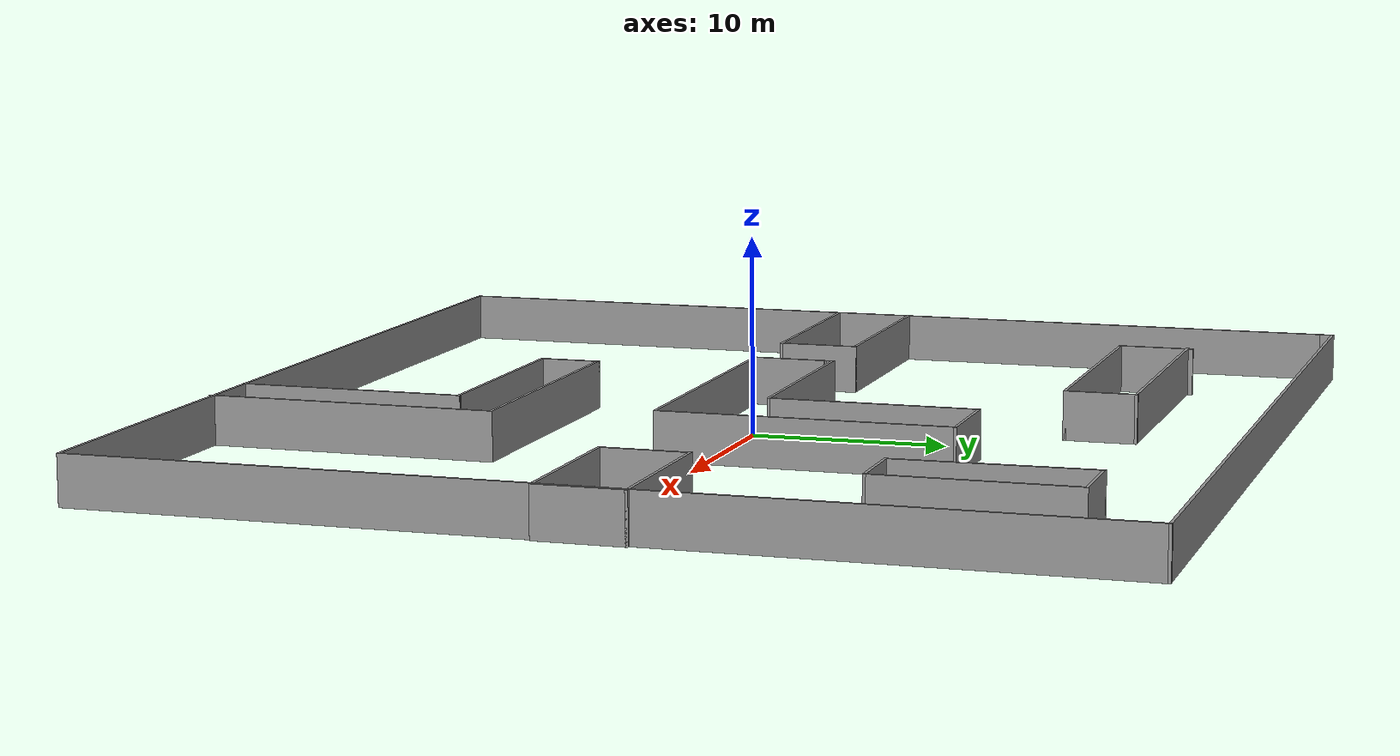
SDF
<?xml version='1.0'?>
<sdf version='1.7'>
  <model name='olha_storage'>
    <pose>0.331672 0.393657 0 0 -0 0</pose>
    <link name='Wall_11'>
      <collision name='Wall_11_Collision'>
        <geometry>
          <box>
            <size>11.75 0.15 2.5</size>
          </box>
        </geometry>
        <pose>0 0 1.25 0 -0 0</pose>
      </collision>
      <visual name='Wall_11_Visual'>
        <pose>0 0 1.25 0 -0 0</pose>
        <geometry>
          <box>
            <size>11.75 0.15 2.5</size>
          </box>
        </geometry>
        <material>
          <script>
            <uri>file://media/materials/scripts/gazebo.material</uri>
            <name>Gazebo/Grey</name>
          </script>
          <ambient>1 1 1 1</ambient>
        </material>
        <meta>
          <layer>0</layer>
        </meta>
      </visual>
      <pose>-19.6433 1.20092 0 0 -0 0</pose>
    </link>
    <link name='Wall_12'>
      <collision name='Wall_12_Collision'>
        <geometry>
          <box>
            <size>4.25 0.15 2.5</size>
          </box>
        </geometry>
        <pose>0 0 1.25 0 -0 0</pose>
      </collision>
      <visual name='Wall_12_Visual'>
        <pose>0 0 1.25 0 -0 0</pose>
        <geometry>
          <box>
            <size>4.25 0.15 2.5</size>
          </box>
        </geometry>
        <material>
          <script>
            <uri>file://media/materials/scripts/gazebo.material</uri>
            <name>Gazebo/Grey</name>
          </script>
          <ambient>1 1 1 1</ambient>
        </material>
        <meta>
          <layer>0</layer>
        </meta>
      </visual>
      <pose>-13.8433 -0.849081 0 0 -0 -1.5708</pose>
    </link>
    <link name='Wall_13'>
      <collision name='Wall_13_Collision'>
        <geometry>
          <box>
            <size>11.5 0.15 2.5</size>
          </box>
        </geometry>
        <pose>0 0 1.25 0 -0 0</pose>
      </collision>
      <visual name='Wall_13_Visual'>
        <pose>0 0 1.25 0 -0 0</pose>
        <geometry>
          <box>
            <size>11.5 0.15 2.5</size>
          </box>
        </geometry>
        <material>
          <script>
            <uri>file://media/materials/scripts/gazebo.material</uri>
            <name>Gazebo/Grey</name>
          </script>
          <ambient>1 1 1 1</ambient>
        </material>
        <meta>
          <layer>0</layer>
        </meta>
      </visual>
      <pose>-19.5183 -2.89908 0 0 -0 3.14159</pose>
    </link>
    <link name='Wall_15'>
      <collision name='Wall_15_Collision'>
        <geometry>
          <box>
            <size>4 0.15 2.5</size>
          </box>
        </geometry>
        <pose>0 0 1.25 0 -0 0</pose>
      </collision>
      <visual name='Wall_15_Visual'>
        <pose>0 0 1.25 0 -0 0</pose>
        <geometry>
          <box>
            <size>4 0.15 2.5</size>
          </box>
        </geometry>
        <material>
          <script>
            <uri>file://media/materials/scripts/gazebo.material</uri>
            <name>Gazebo/Grey</name>
          </script>
          <ambient>1 1 1 1</ambient>
        </material>
        <meta>
          <layer>0</layer>
        </meta>
      </visual>
      <pose>-8.97387 -1.00323 0 0 -0 -1.5708</pose>
    </link>
    <link name='Wall_16'>
      <collision name='Wall_16_Collision'>
        <geometry>
          <box>
            <size>16.5 0.15 2.5</size>
          </box>
        </geometry>
        <pose>0 0 1.25 0 -0 0</pose>
      </collision>
      <visual name='Wall_16_Visual'>
        <pose>0 0 1.25 0 -0 0</pose>
        <geometry>
          <box>
            <size>16.5 0.15 2.5</size>
          </box>
        </geometry>
        <material>
          <script>
            <uri>file://media/materials/scripts/gazebo.material</uri>
            <name>Gazebo/Grey</name>
          </script>
          <ambient>1 1 1 1</ambient>
        </material>
        <meta>
          <layer>0</layer>
        </meta>
      </visual>
      <pose>-0.798866 -2.92822 0 0 -0 0</pose>
    </link>
    <link name='Wall_17'>
      <collision name='Wall_17_Collision'>
        <geometry>
          <box>
            <size>15 0.15 2.5</size>
          </box>
        </geometry>
        <pose>0 0 1.25 0 -0 0</pose>
      </collision>
      <visual name='Wall_17_Visual'>
        <pose>0 0 1.25 0 -0 0</pose>
        <geometry>
          <box>
            <size>15 0.15 2.5</size>
          </box>
        </geometry>
        <material>
          <script>
            <uri>file://media/materials/scripts/gazebo.material</uri>
            <name>Gazebo/Grey</name>
          </script>
          <ambient>1 1 1 1</ambient>
        </material>
        <meta>
          <layer>0</layer>
        </meta>
      </visual>
      <pose>7.37613 4.49678 0 0 -0 1.5708</pose>
    </link>
    <link name='Wall_18'>
      <collision name='Wall_18_Collision'>
        <geometry>
          <box>
            <size>5 0.15 2.5</size>
          </box>
        </geometry>
        <pose>0 0 1.25 0 -0 0</pose>
      </collision>
      <visual name='Wall_18_Visual'>
        <pose>0 0 1.25 0 -0 0</pose>
        <geometry>
          <box>
            <size>5 0.15 2.5</size>
          </box>
        </geometry>
        <material>
          <script>
            <uri>file://media/materials/scripts/gazebo.material</uri>
            <name>Gazebo/Grey</name>
          </script>
          <ambient>1 1 1 1</ambient>
        </material>
        <meta>
          <layer>0</layer>
        </meta>
      </visual>
      <pose>4.95113 11.9218 0 0 -0 3.14159</pose>
    </link>
    <link name='Wall_19'>
      <collision name='Wall_19_Collision'>
        <geometry>
          <box>
            <size>10.75 0.15 2.5</size>
          </box>
        </geometry>
        <pose>0 0 1.25 0 -0 0</pose>
      </collision>
      <visual name='Wall_19_Visual'>
        <pose>0 0 1.25 0 -0 0</pose>
        <geometry>
          <box>
            <size>10.75 0.15 2.5</size>
          </box>
        </geometry>
        <material>
          <script>
            <uri>file://media/materials/scripts/gazebo.material</uri>
            <name>Gazebo/Grey</name>
          </script>
          <ambient>1 1 1 1</ambient>
        </material>
        <meta>
          <layer>0</layer>
        </meta>
      </visual>
      <pose>2.52613 6.62178 0 0 -0 -1.5708</pose>
    </link>
    <link name='Wall_20'>
      <collision name='Wall_20_Collision'>
        <geometry>
          <box>
            <size>11.75 0.15 2.5</size>
          </box>
        </geometry>
        <pose>0 0 1.25 0 -0 0</pose>
      </collision>
      <visual name='Wall_20_Visual'>
        <pose>0 0 1.25 0 -0 0</pose>
        <geometry>
          <box>
            <size>11.75 0.15 2.5</size>
          </box>
        </geometry>
        <material>
          <script>
            <uri>file://media/materials/scripts/gazebo.material</uri>
            <name>Gazebo/Grey</name>
          </script>
          <ambient>1 1 1 1</ambient>
        </material>
        <meta>
          <layer>0</layer>
        </meta>
      </visual>
      <pose>-3.27387 1.32177 0 0 -0 3.14159</pose>
    </link>
    <link name='Wall_22'>
      <collision name='Wall_22_Collision'>
        <geometry>
          <box>
            <size>0.562311 0.15 2.5</size>
          </box>
        </geometry>
        <pose>0 0 1.25 0 -0 0</pose>
      </collision>
      <visual name='Wall_22_Visual'>
        <pose>0 0 1.25 0 -0 0</pose>
        <geometry>
          <box>
            <size>0.562311 0.15 2.5</size>
          </box>
        </geometry>
        <material>
          <script>
            <uri>file://media/materials/scripts/gazebo.material</uri>
            <name>Gazebo/Grey</name>
          </script>
          <ambient>1 1 1 1</ambient>
        </material>
        <meta>
          <layer>0</layer>
        </meta>
      </visual>
      <pose>-9.02387 1.12177 0 0 -0 -1.32582</pose>
    </link>
    <link name='Wall_24'>
      <collision name='Wall_24_Collision'>
        <geometry>
          <box>
            <size>4.5 0.15 2.5</size>
          </box>
        </geometry>
        <pose>0 0 1.25 0 -0 0</pose>
      </collision>
      <visual name='Wall_24_Visual'>
        <pose>0 0 1.25 0 -0 0</pose>
        <geometry>
          <box>
            <size>4.5 0.15 2.5</size>
          </box>
        </geometry>
        <material>
          <script>
            <uri>file://media/materials/scripts/gazebo.material</uri>
            <name>Gazebo/Grey</name>
          </script>
          <ambient>1 1 1 1</ambient>
        </material>
        <meta>
          <layer>0</layer>
        </meta>
      </visual>
      <pose>16.8433 -0.201212 0 0 -0 -1.5708</pose>
    </link>
    <link name='Wall_25'>
      <collision name='Wall_25_Collision'>
        <geometry>
          <box>
            <size>8.75 0.15 2.5</size>
          </box>
        </geometry>
        <pose>0 0 1.25 0 -0 0</pose>
      </collision>
      <visual name='Wall_25_Visual'>
        <pose>0 0 1.25 0 -0 0</pose>
        <geometry>
          <box>
            <size>8.75 0.15 2.5</size>
          </box>
        </geometry>
        <material>
          <script>
            <uri>file://media/materials/scripts/gazebo.material</uri>
            <name>Gazebo/Grey</name>
          </script>
          <ambient>1 1 1 1</ambient>
        </material>
        <meta>
          <layer>0</layer>
        </meta>
      </visual>
      <pose>21.1433 -2.37621 0 0 -0 0</pose>
    </link>
    <link name='Wall_26'>
      <collision name='Wall_26_Collision'>
        <geometry>
          <box>
            <size>4.5 0.15 2.5</size>
          </box>
        </geometry>
        <pose>0 0 1.25 0 -0 0</pose>
      </collision>
      <visual name='Wall_26_Visual'>
        <pose>0 0 1.25 0 -0 0</pose>
        <geometry>
          <box>
            <size>4.5 0.15 2.5</size>
          </box>
        </geometry>
        <material>
          <script>
            <uri>file://media/materials/scripts/gazebo.material</uri>
            <name>Gazebo/Grey</name>
          </script>
          <ambient>1 1 1 1</ambient>
        </material>
        <meta>
          <layer>0</layer>
        </meta>
      </visual>
      <pose>25.4433 -0.201212 0 0 -0 1.5708</pose>
    </link>
    <link name='Wall_27'>
      <collision name='Wall_27_Collision'>
        <geometry>
          <box>
            <size>8.75 0.15 2.5</size>
          </box>
        </geometry>
        <pose>0 0 1.25 0 -0 0</pose>
      </collision>
      <visual name='Wall_27_Visual'>
        <pose>0 0 1.25 0 -0 0</pose>
        <geometry>
          <box>
            <size>8.75 0.15 2.5</size>
          </box>
        </geometry>
        <material>
          <script>
            <uri>file://media/materials/scripts/gazebo.material</uri>
            <name>Gazebo/Grey</name>
          </script>
          <ambient>1 1 1 1</ambient>
        </material>
        <meta>
          <layer>0</layer>
        </meta>
      </visual>
      <pose>21.1433 1.97379 0 0 -0 3.14159</pose>
    </link>
    <link name='Wall_29'>
      <collision name='Wall_29_Collision'>
        <geometry>
          <box>
            <size>4 0.15 2.5</size>
          </box>
        </geometry>
        <pose>0 0 1.25 0 -0 0</pose>
      </collision>
      <visual name='Wall_29_Visual'>
        <pose>0 0 1.25 0 -0 0</pose>
        <geometry>
          <box>
            <size>4 0.15 2.5</size>
          </box>
        </geometry>
        <material>
          <script>
            <uri>file://media/materials/scripts/gazebo.material</uri>
            <name>Gazebo/Grey</name>
          </script>
          <ambient>1 1 1 1</ambient>
        </material>
        <meta>
          <layer>0</layer>
        </meta>
      </visual>
      <pose>17.2748 20.5802 0 0 -0 0</pose>
    </link>
    <link name='Wall_30'>
      <collision name='Wall_30_Collision'>
        <geometry>
          <box>
            <size>10 0.15 2.5</size>
          </box>
        </geometry>
        <pose>0 0 1.25 0 -0 0</pose>
      </collision>
      <visual name='Wall_30_Visual'>
        <pose>0 0 1.25 0 -0 0</pose>
        <geometry>
          <box>
            <size>10 0.15 2.5</size>
          </box>
        </geometry>
        <material>
          <script>
            <uri>file://media/materials/scripts/gazebo.material</uri>
            <name>Gazebo/Grey</name>
          </script>
          <ambient>1 1 1 1</ambient>
        </material>
        <meta>
          <layer>0</layer>
        </meta>
      </visual>
      <pose>19.1998 15.6552 0 0 -0 -1.5708</pose>
    </link>
    <link name='Wall_31'>
      <collision name='Wall_31_Collision'>
        <geometry>
          <box>
            <size>3.75 0.15 2.5</size>
          </box>
        </geometry>
        <pose>0 0 1.25 0 -0 0</pose>
      </collision>
      <visual name='Wall_31_Visual'>
        <pose>0 0 1.25 0 -0 0</pose>
        <geometry>
          <box>
            <size>3.75 0.15 2.5</size>
          </box>
        </geometry>
        <material>
          <script>
            <uri>file://media/materials/scripts/gazebo.material</uri>
            <name>Gazebo/Grey</name>
          </script>
          <ambient>1 1 1 1</ambient>
        </material>
        <meta>
          <layer>0</layer>
        </meta>
      </visual>
      <pose>17.3998 10.7302 0 0 -0 3.14159</pose>
    </link>
    <link name='Wall_32'>
      <collision name='Wall_32_Collision'>
        <geometry>
          <box>
            <size>10.0032 0.15 2.5</size>
          </box>
        </geometry>
        <pose>0 0 1.25 0 -0 0</pose>
      </collision>
      <visual name='Wall_32_Visual'>
        <pose>0 0 1.25 0 -0 0</pose>
        <geometry>
          <box>
            <size>10.0032 0.15 2.5</size>
          </box>
        </geometry>
        <material>
          <script>
            <uri>file://media/materials/scripts/gazebo.material</uri>
            <name>Gazebo/Grey</name>
          </script>
          <ambient>1 1 1 1</ambient>
        </material>
        <meta>
          <layer>0</layer>
        </meta>
      </visual>
      <pose>15.4748 15.6552 0 0 -0 1.59617</pose>
    </link>
    <link name='Wall_35'>
      <collision name='Wall_35_Collision'>
        <geometry>
          <box>
            <size>11.75 0.15 2.5</size>
          </box>
        </geometry>
        <pose>0 0 1.25 0 -0 0</pose>
      </collision>
      <visual name='Wall_35_Visual'>
        <pose>0 0 1.25 0 -0 0</pose>
        <geometry>
          <box>
            <size>11.75 0.15 2.5</size>
          </box>
        </geometry>
        <material>
          <script>
            <uri>file://media/materials/scripts/gazebo.material</uri>
            <name>Gazebo/Grey</name>
          </script>
          <ambient>1 1 1 1</ambient>
        </material>
        <meta>
          <layer>0</layer>
        </meta>
      </visual>
      <pose>0.527124 -13.5094 0 0 -0 0</pose>
    </link>
    <link name='Wall_36'>
      <collision name='Wall_36_Collision'>
        <geometry>
          <box>
            <size>11.75 0.15 2.5</size>
          </box>
        </geometry>
        <pose>0 0 1.25 0 -0 0</pose>
      </collision>
      <visual name='Wall_36_Visual'>
        <pose>0 0 1.25 0 -0 0</pose>
        <geometry>
          <box>
            <size>11.75 0.15 2.5</size>
          </box>
        </geometry>
        <material>
          <script>
            <uri>file://media/materials/scripts/gazebo.material</uri>
            <name>Gazebo/Grey</name>
          </script>
          <ambient>1 1 1 1</ambient>
        </material>
        <meta>
          <layer>0</layer>
        </meta>
      </visual>
      <pose>6.32712 -19.3094 0 0 -0 -1.5708</pose>
    </link>
    <link name='Wall_41'>
      <collision name='Wall_41_Collision'>
        <geometry>
          <box>
            <size>3.25 0.15 2.5</size>
          </box>
        </geometry>
        <pose>0 0 1.25 0 -0 0</pose>
      </collision>
      <visual name='Wall_41_Visual'>
        <pose>0 0 1.25 0 -0 0</pose>
        <geometry>
          <box>
            <size>3.25 0.15 2.5</size>
          </box>
        </geometry>
        <material>
          <script>
            <uri>file://media/materials/scripts/gazebo.material</uri>
            <name>Gazebo/Grey</name>
          </script>
          <ambient>1 1 1 1</ambient>
        </material>
        <meta>
          <layer>0</layer>
        </meta>
      </visual>
      <pose>-5.27288 -11.9594 0 0 -0 1.5708</pose>
    </link>
    <link name='Wall_42'>
      <collision name='Wall_42_Collision'>
        <geometry>
          <box>
            <size>15.25 0.15 2.5</size>
          </box>
        </geometry>
        <pose>0 0 1.25 0 -0 0</pose>
      </collision>
      <visual name='Wall_42_Visual'>
        <pose>0 0 1.25 0 -0 0</pose>
        <geometry>
          <box>
            <size>15.25 0.15 2.5</size>
          </box>
        </geometry>
        <material>
          <script>
            <uri>file://media/materials/scripts/gazebo.material</uri>
            <name>Gazebo/Grey</name>
          </script>
          <ambient>1 1 1 1</ambient>
        </material>
        <meta>
          <layer>0</layer>
        </meta>
      </visual>
      <pose>2.27712 -10.4094 0 0 -0 0</pose>
    </link>
    <link name='Wall_43'>
      <collision name='Wall_43_Collision'>
        <geometry>
          <box>
            <size>15 0.15 2.5</size>
          </box>
        </geometry>
        <pose>0 0 1.25 0 -0 0</pose>
      </collision>
      <visual name='Wall_43_Visual'>
        <pose>0 0 1.25 0 -0 0</pose>
        <geometry>
          <box>
            <size>15 0.15 2.5</size>
          </box>
        </geometry>
        <material>
          <script>
            <uri>file://media/materials/scripts/gazebo.material</uri>
            <name>Gazebo/Grey</name>
          </script>
          <ambient>1 1 1 1</ambient>
        </material>
        <meta>
          <layer>0</layer>
        </meta>
      </visual>
      <pose>9.82712 -17.8344 0 0 -0 -1.5708</pose>
    </link>
    <link name='Wall_45'>
      <collision name='Wall_45_Collision'>
        <geometry>
          <box>
            <size>4 0.15 2.5</size>
          </box>
        </geometry>
        <pose>0 0 1.25 0 -0 0</pose>
      </collision>
      <visual name='Wall_45_Visual'>
        <pose>0 0 1.25 0 -0 0</pose>
        <geometry>
          <box>
            <size>4 0.15 2.5</size>
          </box>
        </geometry>
        <material>
          <script>
            <uri>file://media/materials/scripts/gazebo.material</uri>
            <name>Gazebo/Grey</name>
          </script>
          <ambient>1 1 1 1</ambient>
        </material>
        <meta>
          <layer>0</layer>
        </meta>
      </visual>
      <pose>-18.336 16.7386 0 0 -0 -1.5708</pose>
    </link>
    <link name='Wall_46'>
      <collision name='Wall_46_Collision'>
        <geometry>
          <box>
            <size>14.75 0.15 2.5</size>
          </box>
        </geometry>
        <pose>0 0 1.25 0 -0 0</pose>
      </collision>
      <visual name='Wall_46_Visual'>
        <pose>0 0 1.25 0 -0 0</pose>
        <geometry>
          <box>
            <size>14.75 0.15 2.5</size>
          </box>
        </geometry>
        <material>
          <script>
            <uri>file://media/materials/scripts/gazebo.material</uri>
            <name>Gazebo/Grey</name>
          </script>
          <ambient>1 1 1 1</ambient>
        </material>
        <meta>
          <layer>0</layer>
        </meta>
      </visual>
      <pose>-11.036 14.8136 0 0 -0 0</pose>
    </link>
    <link name='Wall_47'>
      <collision name='Wall_47_Collision'>
        <geometry>
          <box>
            <size>3.75 0.15 2.5</size>
          </box>
        </geometry>
        <pose>0 0 1.25 0 -0 0</pose>
      </collision>
      <visual name='Wall_47_Visual'>
        <pose>0 0 1.25 0 -0 0</pose>
        <geometry>
          <box>
            <size>3.75 0.15 2.5</size>
          </box>
        </geometry>
        <material>
          <script>
            <uri>file://media/materials/scripts/gazebo.material</uri>
            <name>Gazebo/Grey</name>
          </script>
          <ambient>1 1 1 1</ambient>
        </material>
        <meta>
          <layer>0</layer>
        </meta>
      </visual>
      <pose>-3.736 16.6136 0 0 -0 1.5708</pose>
    </link>
    <link name='Wall_48'>
      <collision name='Wall_48_Collision'>
        <geometry>
          <box>
            <size>15 0.15 2.5</size>
          </box>
        </geometry>
        <pose>0 0 1.25 0 -0 0</pose>
      </collision>
      <visual name='Wall_48_Visual'>
        <pose>0 0 1.25 0 -0 0</pose>
        <geometry>
          <box>
            <size>15 0.15 2.5</size>
          </box>
        </geometry>
        <material>
          <script>
            <uri>file://media/materials/scripts/gazebo.material</uri>
            <name>Gazebo/Grey</name>
          </script>
          <ambient>1 1 1 1</ambient>
        </material>
        <meta>
          <layer>0</layer>
        </meta>
      </visual>
      <pose>-11.161 18.4136 0 0 -0 3.14159</pose>
    </link>
    <link name='Wall_5'>
      <collision name='Wall_5_Collision'>
        <geometry>
          <box>
            <size>49.75 0.15 2.5</size>
          </box>
        </geometry>
        <pose>0 0 1.25 0 -0 0</pose>
      </collision>
      <visual name='Wall_5_Visual'>
        <pose>0 0 1.25 0 -0 0</pose>
        <geometry>
          <box>
            <size>49.75 0.15 2.5</size>
          </box>
        </geometry>
        <material>
          <script>
            <uri>file://media/materials/scripts/gazebo.material</uri>
            <name>Gazebo/Grey</name>
          </script>
          <ambient>1 1 1 1</ambient>
        </material>
        <meta>
          <layer>0</layer>
        </meta>
      </visual>
      <pose>-25.3038 -0.2906 0 0 -0 -1.5708</pose>
    </link>
    <link name='Wall_6'>
      <collision name='Wall_6_Collision'>
        <geometry>
          <box>
            <size>50.75 0.15 2.5</size>
          </box>
        </geometry>
        <pose>0 0 1.25 0 -0 0</pose>
      </collision>
      <visual name='Wall_6_Visual'>
        <pose>0 0 1.25 0 -0 0</pose>
        <geometry>
          <box>
            <size>50.75 0.15 2.5</size>
          </box>
        </geometry>
        <material>
          <script>
            <uri>file://media/materials/scripts/gazebo.material</uri>
            <name>Gazebo/Grey</name>
          </script>
          <ambient>1 1 1 1</ambient>
        </material>
        <meta>
          <layer>0</layer>
        </meta>
      </visual>
      <pose>-0.00376 -25.0906 0 0 -0 0</pose>
    </link>
    <link name='Wall_7'>
      <collision name='Wall_7_Collision'>
        <geometry>
          <box>
            <size>50.5 0.15 2.5</size>
          </box>
        </geometry>
        <pose>0 0 1.25 0 -0 0</pose>
      </collision>
      <visual name='Wall_7_Visual'>
        <pose>0 0 1.25 0 -0 0</pose>
        <geometry>
          <box>
            <size>50.5 0.15 2.5</size>
          </box>
        </geometry>
        <material>
          <script>
            <uri>file://media/materials/scripts/gazebo.material</uri>
            <name>Gazebo/Grey</name>
          </script>
          <ambient>1 1 1 1</ambient>
        </material>
        <meta>
          <layer>0</layer>
        </meta>
      </visual>
      <pose>25.2962 0.0844 0 0 -0 1.5708</pose>
    </link>
    <link name='Wall_8'>
      <collision name='Wall_8_Collision'>
        <geometry>
          <box>
            <size>50.75 0.15 2.5</size>
          </box>
        </geometry>
        <pose>0 0 1.25 0 -0 0</pose>
      </collision>
      <visual name='Wall_8_Visual'>
        <pose>0 0 1.25 0 -0 0</pose>
        <geometry>
          <box>
            <size>50.75 0.15 2.5</size>
          </box>
        </geometry>
        <material>
          <script>
            <uri>file://media/materials/scripts/gazebo.material</uri>
            <name>Gazebo/Grey</name>
          </script>
          <ambient>1 1 1 1</ambient>
        </material>
        <meta>
          <layer>0</layer>
        </meta>
      </visual>
      <pose>-0.00376 25.2594 0 0 -0 3.14159</pose>
    </link>
    <link name='Wall_9'>
      <collision name='Wall_9_Collision'>
        <geometry>
          <box>
            <size>3.25 0.15 2.5</size>
          </box>
        </geometry>
        <pose>0 0 1.25 0 -0 0</pose>
      </collision>
      <visual name='Wall_9_Visual'>
        <pose>0 0 1.25 0 -0 0</pose>
        <geometry>
          <box>
            <size>3.25 0.15 2.5</size>
          </box>
        </geometry>
        <material>
          <script>
            <uri>file://media/materials/scripts/gazebo.material</uri>
            <name>Gazebo/Grey</name>
          </script>
          <ambient>1 1 1 1</ambient>
        </material>
        <meta>
          <layer>0</layer>
        </meta>
      </visual>
      <pose>-25.3038 23.7094 0 0 -0 -1.5708</pose>
    </link>
    <static>1</static>
  </model>
</sdf>
